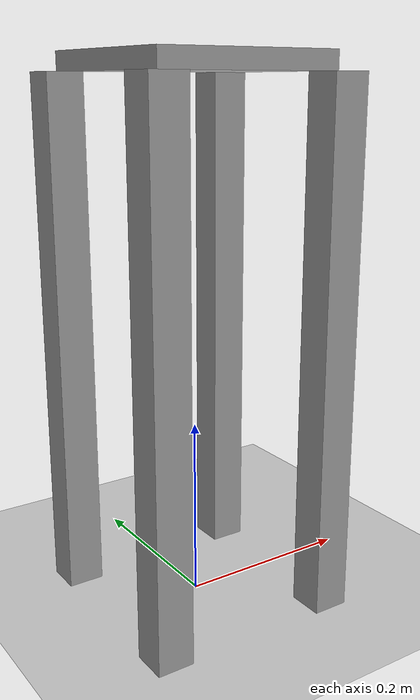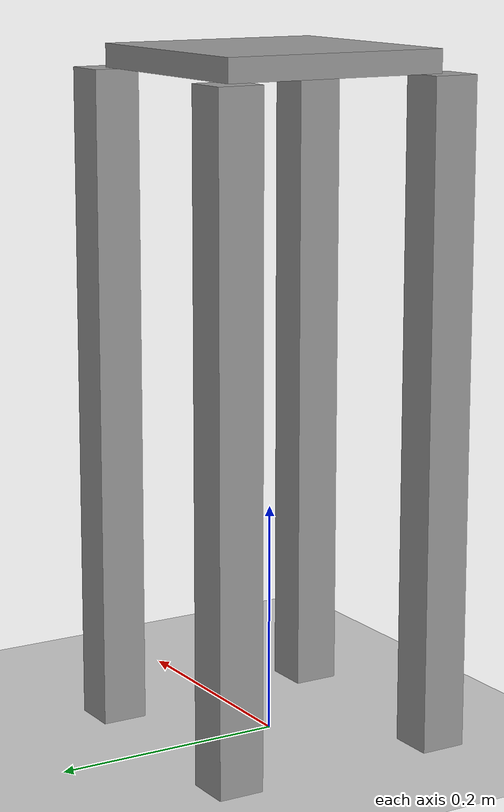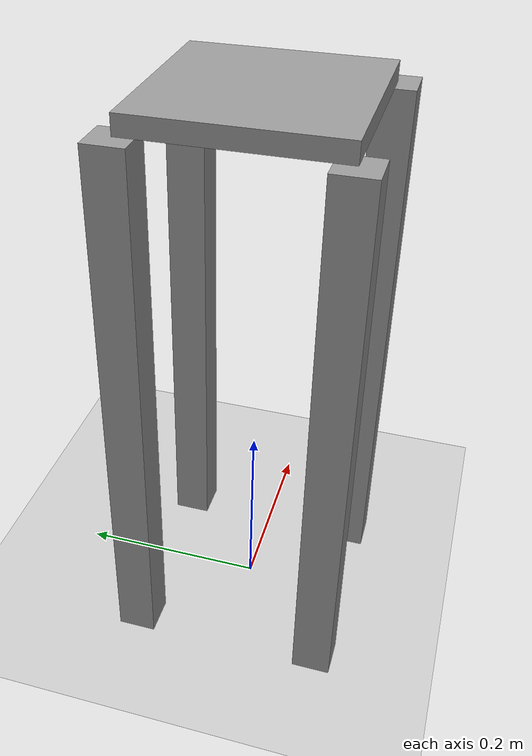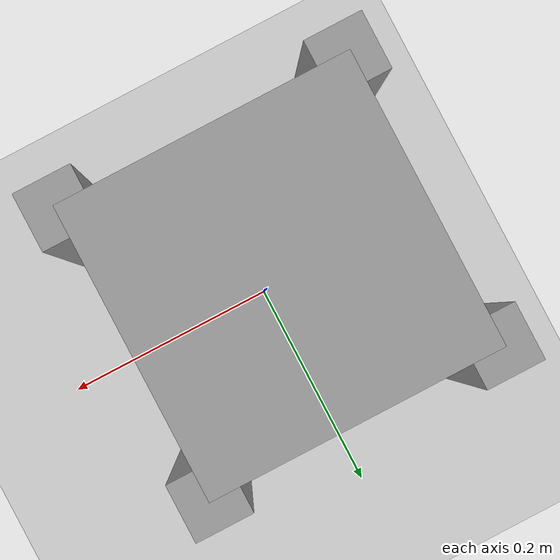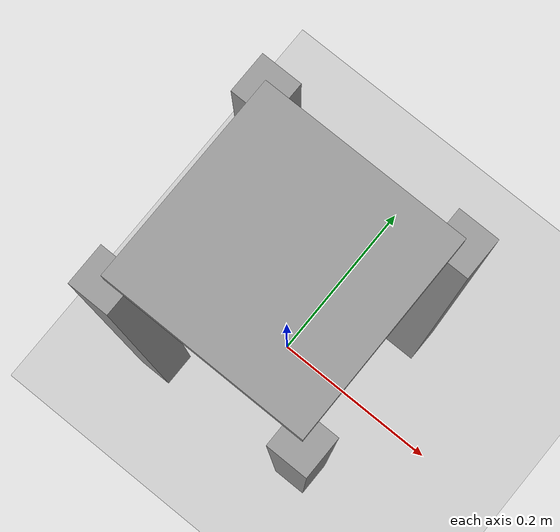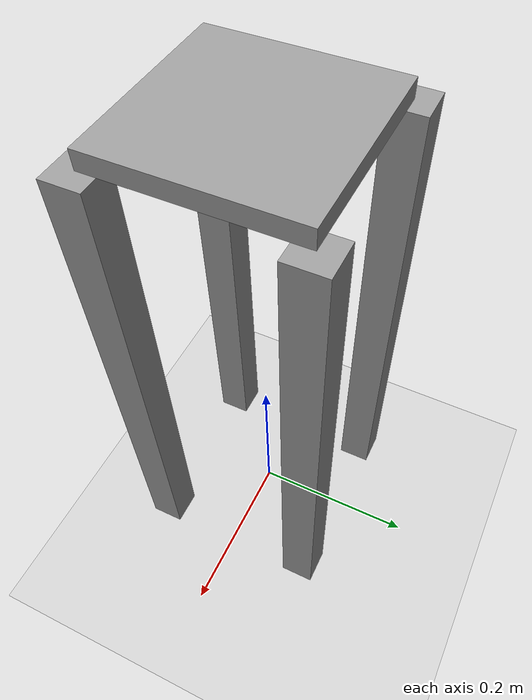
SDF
<?xml version="1.0" ?>

<sdf version="1.6">

  <world name="ur3_cubes">

    <gui>
      <camera name="user_camera">
        <pose>1.4 -2.3 1.4 0.0 0.25 1.9</pose>
      </camera>
    </gui>

    <gravity>0 0 -9.81</gravity>

    <physics name="default_physics" default="0" type="ode">
      <max_step_size>0.001</max_step_size>
      <real_time_factor>1</real_time_factor>
      <real_time_update_rate>1000</real_time_update_rate>
    </physics>

    <scene>
      <ambient>0.4 0.4 0.4 1</ambient>
      <background>0.7 0.7 0.7 1</background>
      <shadows>1</shadows>
    </scene>

    <!-- Light Source -->
    <include>
      <uri>model://sun</uri>
    </include>

    <!-- A ground plane -->
    <include>
      <uri>model://ground_plane</uri>
      <pose>0 0 0 0 0 0</pose>
    </include>

    <!-- A gazebo links attacher -->

    <!-- The robot base -->
    <model name="ur3_base">
      <include>
        <uri>model://ur3_base</uri>
        <pose>0 0 0 0 0 0</pose>
      </include>
    </model>

    <!-- Table -->
    <!-- Table top is at (x,y,z) = (0.7, 0, 0.775) -->
    <!-- Table top size is 0.9x0.9 -->

    <!-- Cubes -->

  </world>

</sdf>

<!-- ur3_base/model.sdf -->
<sdf version="1.6">
  <model name="ur3_base">
    <static>true</static>

    <link name="top_plate">
      <pose>0 0 0.58 0 0 0</pose>
      <collision name="top_plate_collision">
        <geometry>
          <box>
            <size>0.2 0.2 0.02</size>
          </box>
        </geometry>
        <surface>
          <contact>
            <collide_bitmask>0x01</collide_bitmask>
          </contact>
        </surface>
      </collision>
      <visual name="top_plate_visual">
        <geometry>
          <box>
            <size>0.2 0.2 0.02</size>
          </box>
        </geometry>
        <material>
          <script>
            <uri>file://media/materials/scripts/gazebo.material</uri>
            <name>Gazebo/Grey</name>
          </script>
        </material>
      </visual>
    </link>
    <link name="leg1">
      <pose>0.10 0.10 0.285 0 0 0</pose>
      <collision name="leg1_collision">
        <geometry>
          <box>
            <size>0.04 0.04 0.57</size>
          </box>
        </geometry>
      </collision>
      <visual name="leg1_visual">
        <geometry>
          <box>
            <size>0.04 0.04 0.57</size>
          </box>
        </geometry>
        <material>
          <script>
            <uri>file://media/materials/scripts/gazebo.material</uri>
            <name>Gazebo/Grey</name>
          </script>
        </material>
      </visual>
    </link>
    <link name="leg2">
      <pose>-0.10 0.10 0.285 0 0 0</pose>
      <collision name="leg2_collision">
        <geometry>
          <box>
            <size>0.04 0.04 0.57</size>
          </box>
        </geometry>
      </collision>
      <visual name="leg2_visual">
        <geometry>
          <box>
            <size>0.04 0.04 0.57</size>
          </box>
        </geometry>
        <material>
          <script>
            <uri>file://media/materials/scripts/gazebo.material</uri>
            <name>Gazebo/Grey</name>
          </script>
        </material>
      </visual>
    </link>
    <link name="leg3">
      <pose>0.10 -0.10 0.285 0 0 0</pose>
      <collision name="leg3_collision">
        <geometry>
          <box>
            <size>0.04 0.04 0.57</size>
          </box>
        </geometry>
      </collision>
      <visual name="leg3_visual">
        <geometry>
          <box>
            <size>0.04 0.04 0.57</size>
          </box>
        </geometry>
        <material>
          <script>
            <uri>file://media/materials/scripts/gazebo.material</uri>
            <name>Gazebo/Grey</name>
          </script>
        </material>
      </visual>
    </link>
    <link name="leg4">
      <pose>-0.10 -0.10 0.285 0 0 0</pose>
      <collision name="leg4_collision">
        <geometry>
          <box>
            <size>0.04 0.04 0.57</size>
          </box>
        </geometry>
      </collision>
      <visual name="leg4_visual">
        <geometry>
          <box>
            <size>0.04 0.04 0.57</size>
          </box>
        </geometry>
        <material>
          <script>
            <uri>file://media/materials/scripts/gazebo.material</uri>
            <name>Gazebo/Grey</name>
          </script>
        </material>
      </visual>
    </link>
  </model>
</sdf>
